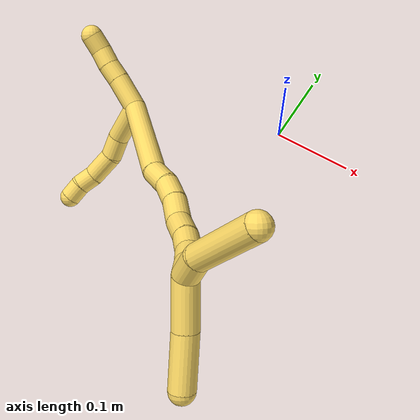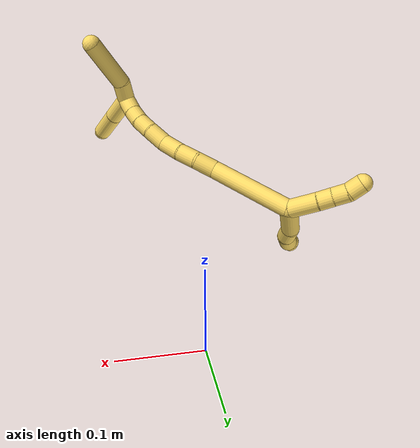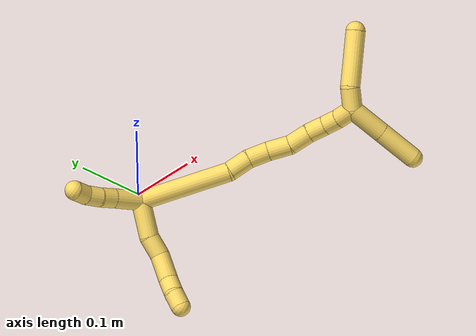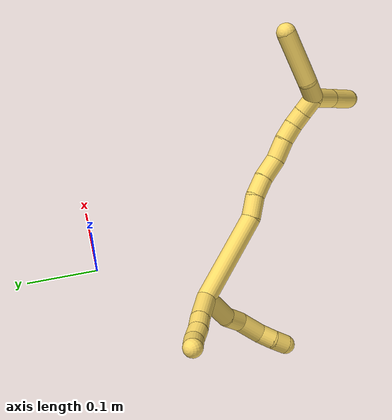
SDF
<sdf version="1.7">
 <world name="default">
  <model name="5">
   <static>0</static>
   <link name="5">
    <collision name="collision-cylinder-e_1_2_8">
     <pose>0.004473 0.015985 0.017065 -0.752718 0.189028 -0.074891</pose>
     <geometry><cylinder><radius>0.0125</radius><length>0.047613</length></cylinder></geometry>
     <surface>
      <friction><ode><mu>1.16</mu><mu2>1.16</mu2><slip1>0</slip1><slip2>0</slip2></ode></friction>
      <contact><ode><kp>1e+06</kp><kd>1</kd><max_vel>0</max_vel><min_depth>0.001</min_depth></ode></contact>
     </surface>
    </collision>
    <visual name="visual-cylinder-e_1_2_8">
     <pose>0.004473 0.015985 0.017065 -0.752718 0.189028 -0.074891</pose>
     <geometry><cylinder><radius>0.0125</radius><length>0.047613</length></cylinder></geometry>
     <material><ambient>1 0.858824 0.4 1</ambient></material>
    </visual>
    <collision name="collision-cylinder-e_2_8_9">
     <pose>0.011957 0.03756 0.045785 -0.447271 0.228793 -0.052253</pose>
     <geometry><cylinder><radius>0.0125</radius><length>0.026542</length></cylinder></geometry>
     <surface>
      <friction><ode><mu>1.16</mu><mu2>1.16</mu2><slip1>0</slip1><slip2>0</slip2></ode></friction>
      <contact><ode><kp>1e+06</kp><kd>1</kd><max_vel>0</max_vel><min_depth>0.001</min_depth></ode></contact>
     </surface>
    </collision>
    <visual name="visual-cylinder-e_2_8_9">
     <pose>0.011957 0.03756 0.045785 -0.447271 0.228793 -0.052253</pose>
     <geometry><cylinder><radius>0.0125</radius><length>0.026542</length></cylinder></geometry>
     <material><ambient>1 0.858824 0.4 1</ambient></material>
    </visual>
    <collision name="collision-cylinder-e_3_9_10">
     <pose>0.023122 0.052757 0.069293 -0.681043 0.490875 -0.177044</pose>
     <geometry><cylinder><radius>0.0125</radius><length>0.034602</length></cylinder></geometry>
     <surface>
      <friction><ode><mu>1.16</mu><mu2>1.16</mu2><slip1>0</slip1><slip2>0</slip2></ode></friction>
      <contact><ode><kp>1e+06</kp><kd>1</kd><max_vel>0</max_vel><min_depth>0.001</min_depth></ode></contact>
     </surface>
    </collision>
    <visual name="visual-cylinder-e_3_9_10">
     <pose>0.023122 0.052757 0.069293 -0.681043 0.490875 -0.177044</pose>
     <geometry><cylinder><radius>0.0125</radius><length>0.034602</length></cylinder></geometry>
     <material><ambient>1 0.858824 0.4 1</ambient></material>
    </visual>
    <collision name="collision-cylinder-e_4_10_11">
     <pose>0.038625 0.066904 0.086826 -0.674403 0.790644 -0.290536</pose>
     <geometry><cylinder><radius>0.0125</radius><length>0.020674</length></cylinder></geometry>
     <surface>
      <friction><ode><mu>1.16</mu><mu2>1.16</mu2><slip1>0</slip1><slip2>0</slip2></ode></friction>
      <contact><ode><kp>1e+06</kp><kd>1</kd><max_vel>0</max_vel><min_depth>0.001</min_depth></ode></contact>
     </surface>
    </collision>
    <visual name="visual-cylinder-e_4_10_11">
     <pose>0.038625 0.066904 0.086826 -0.674403 0.790644 -0.290536</pose>
     <geometry><cylinder><radius>0.0125</radius><length>0.020674</length></cylinder></geometry>
     <material><ambient>1 0.858824 0.4 1</ambient></material>
    </visual>
    <collision name="collision-cylinder-e_5_11_6">
     <pose>0.0514 0.075899 0.100019 -0.535206 0.555928 -0.156157</pose>
     <geometry><cylinder><radius>0.0125</radius><length>0.020569</length></cylinder></geometry>
     <surface>
      <friction><ode><mu>1.16</mu><mu2>1.16</mu2><slip1>0</slip1><slip2>0</slip2></ode></friction>
      <contact><ode><kp>1e+06</kp><kd>1</kd><max_vel>0</max_vel><min_depth>0.001</min_depth></ode></contact>
     </surface>
    </collision>
    <visual name="visual-cylinder-e_5_11_6">
     <pose>0.0514 0.075899 0.100019 -0.535206 0.555928 -0.156157</pose>
     <geometry><cylinder><radius>0.0125</radius><length>0.020569</length></cylinder></geometry>
     <material><ambient>1 0.858824 0.4 1</ambient></material>
    </visual>
    <collision name="collision-cylinder-e_1_2_12">
     <pose>0.006217 0.008078 -0.01679 -2.69317 0.322027 -1.23776</pose>
     <geometry><cylinder><radius>0.0125</radius><length>0.039284</length></cylinder></geometry>
     <surface>
      <friction><ode><mu>1.16</mu><mu2>1.16</mu2><slip1>0</slip1><slip2>0</slip2></ode></friction>
      <contact><ode><kp>1e+06</kp><kd>1</kd><max_vel>0</max_vel><min_depth>0.001</min_depth></ode></contact>
     </surface>
    </collision>
    <visual name="visual-cylinder-e_1_2_12">
     <pose>0.006217 0.008078 -0.01679 -2.69317 0.322027 -1.23776</pose>
     <geometry><cylinder><radius>0.0125</radius><length>0.039284</length></cylinder></geometry>
     <material><ambient>1 0.858824 0.4 1</ambient></material>
    </visual>
    <collision name="collision-cylinder-e_2_12_13">
     <pose>0.016435 0.020261 -0.041975 -2.68679 0.404607 -1.45047</pose>
     <geometry><cylinder><radius>0.0125</radius><length>0.02033</length></cylinder></geometry>
     <surface>
      <friction><ode><mu>1.16</mu><mu2>1.16</mu2><slip1>0</slip1><slip2>0</slip2></ode></friction>
      <contact><ode><kp>1e+06</kp><kd>1</kd><max_vel>0</max_vel><min_depth>0.001</min_depth></ode></contact>
     </surface>
    </collision>
    <visual name="visual-cylinder-e_2_12_13">
     <pose>0.016435 0.020261 -0.041975 -2.68679 0.404607 -1.45047</pose>
     <geometry><cylinder><radius>0.0125</radius><length>0.02033</length></cylinder></geometry>
     <material><ambient>1 0.858824 0.4 1</ambient></material>
    </visual>
    <collision name="collision-cylinder-e_3_13_14">
     <pose>0.023432 0.028012 -0.059389 -2.75741 0.298762 -1.31715</pose>
     <geometry><cylinder><radius>0.0125</radius><length>0.02036</length></cylinder></geometry>
     <surface>
      <friction><ode><mu>1.16</mu><mu2>1.16</mu2><slip1>0</slip1><slip2>0</slip2></ode></friction>
      <contact><ode><kp>1e+06</kp><kd>1</kd><max_vel>0</max_vel><min_depth>0.001</min_depth></ode></contact>
     </surface>
    </collision>
    <visual name="visual-cylinder-e_3_13_14">
     <pose>0.023432 0.028012 -0.059389 -2.75741 0.298762 -1.31715</pose>
     <geometry><cylinder><radius>0.0125</radius><length>0.02036</length></cylinder></geometry>
     <material><ambient>1 0.858824 0.4 1</ambient></material>
    </visual>
    <collision name="collision-cylinder-e_4_14_5">
     <pose>0.031324 0.032948 -0.077048 -2.99342 0.510768 -2.58763</pose>
     <geometry><cylinder><radius>0.0125</radius><length>0.020026</length></cylinder></geometry>
     <surface>
      <friction><ode><mu>1.16</mu><mu2>1.16</mu2><slip1>0</slip1><slip2>0</slip2></ode></friction>
      <contact><ode><kp>1e+06</kp><kd>1</kd><max_vel>0</max_vel><min_depth>0.001</min_depth></ode></contact>
     </surface>
    </collision>
    <visual name="visual-cylinder-e_4_14_5">
     <pose>0.031324 0.032948 -0.077048 -2.99342 0.510768 -2.58763</pose>
     <geometry><cylinder><radius>0.0125</radius><length>0.020026</length></cylinder></geometry>
     <material><ambient>1 0.858824 0.4 1</ambient></material>
    </visual>
    <collision name="collision-cylinder-e_1_2_15">
     <pose>0.012249 -0.047229 0.033964 0.947352 0.207534 0.106664</pose>
     <geometry><cylinder><radius>0.0125</radius><length>0.118898</length></cylinder></geometry>
     <surface>
      <friction><ode><mu>1.16</mu><mu2>1.16</mu2><slip1>0</slip1><slip2>0</slip2></ode></friction>
      <contact><ode><kp>1e+06</kp><kd>1</kd><max_vel>0</max_vel><min_depth>0.001</min_depth></ode></contact>
     </surface>
    </collision>
    <visual name="visual-cylinder-e_1_2_15">
     <pose>0.012249 -0.047229 0.033964 0.947352 0.207534 0.106664</pose>
     <geometry><cylinder><radius>0.0125</radius><length>0.118898</length></cylinder></geometry>
     <material><ambient>1 0.858824 0.4 1</ambient></material>
    </visual>
    <collision name="collision-cylinder-e_2_15_16">
     <pose>0.024253 -0.107861 0.07345 1.17995 -0.016975 -0.011365</pose>
     <geometry><cylinder><radius>0.0125</radius><length>0.028995</length></cylinder></geometry>
     <surface>
      <friction><ode><mu>1.16</mu><mu2>1.16</mu2><slip1>0</slip1><slip2>0</slip2></ode></friction>
      <contact><ode><kp>1e+06</kp><kd>1</kd><max_vel>0</max_vel><min_depth>0.001</min_depth></ode></contact>
     </surface>
    </collision>
    <visual name="visual-cylinder-e_2_15_16">
     <pose>0.024253 -0.107861 0.07345 1.17995 -0.016975 -0.011365</pose>
     <geometry><cylinder><radius>0.0125</radius><length>0.028995</length></cylinder></geometry>
     <material><ambient>1 0.858824 0.4 1</ambient></material>
    </visual>
    <collision name="collision-cylinder-e_3_16_17">
     <pose>0.025838 -0.132509 0.086366 0.989162 0.135252 0.073019</pose>
     <geometry><cylinder><radius>0.0125</radius><length>0.027165</length></cylinder></geometry>
     <surface>
      <friction><ode><mu>1.16</mu><mu2>1.16</mu2><slip1>0</slip1><slip2>0</slip2></ode></friction>
      <contact><ode><kp>1e+06</kp><kd>1</kd><max_vel>0</max_vel><min_depth>0.001</min_depth></ode></contact>
     </surface>
    </collision>
    <visual name="visual-cylinder-e_3_16_17">
     <pose>0.025838 -0.132509 0.086366 0.989162 0.135252 0.073019</pose>
     <geometry><cylinder><radius>0.0125</radius><length>0.027165</length></cylinder></geometry>
     <material><ambient>1 0.858824 0.4 1</ambient></material>
    </visual>
    <collision name="collision-cylinder-e_4_17_18">
     <pose>0.0318 -0.15511 0.102337 0.923897 0.282506 0.141361</pose>
     <geometry><cylinder><radius>0.0125</radius><length>0.029635</length></cylinder></geometry>
     <surface>
      <friction><ode><mu>1.16</mu><mu2>1.16</mu2><slip1>0</slip1><slip2>0</slip2></ode></friction>
      <contact><ode><kp>1e+06</kp><kd>1</kd><max_vel>0</max_vel><min_depth>0.001</min_depth></ode></contact>
     </surface>
    </collision>
    <visual name="visual-cylinder-e_4_17_18">
     <pose>0.0318 -0.15511 0.102337 0.923897 0.282506 0.141361</pose>
     <geometry><cylinder><radius>0.0125</radius><length>0.029635</length></cylinder></geometry>
     <material><ambient>1 0.858824 0.4 1</ambient></material>
    </visual>
    <collision name="collision-cylinder-e_5_18_19">
     <pose>0.039488 -0.179381 0.11563 1.22066 0.253184 0.177564</pose>
     <geometry><cylinder><radius>0.0125</radius><length>0.028406</length></cylinder></geometry>
     <surface>
      <friction><ode><mu>1.16</mu><mu2>1.16</mu2><slip1>0</slip1><slip2>0</slip2></ode></friction>
      <contact><ode><kp>1e+06</kp><kd>1</kd><max_vel>0</max_vel><min_depth>0.001</min_depth></ode></contact>
     </surface>
    </collision>
    <visual name="visual-cylinder-e_5_18_19">
     <pose>0.039488 -0.179381 0.11563 1.22066 0.253184 0.177564</pose>
     <geometry><cylinder><radius>0.0125</radius><length>0.028406</length></cylinder></geometry>
     <material><ambient>1 0.858824 0.4 1</ambient></material>
    </visual>
    <collision name="collision-cylinder-e_6_19_20">
     <pose>0.047103 -0.201993 0.125096 1.11533 0.359466 0.225682</pose>
     <geometry><cylinder><radius>0.0125</radius><length>0.023068</length></cylinder></geometry>
     <surface>
      <friction><ode><mu>1.16</mu><mu2>1.16</mu2><slip1>0</slip1><slip2>0</slip2></ode></friction>
      <contact><ode><kp>1e+06</kp><kd>1</kd><max_vel>0</max_vel><min_depth>0.001</min_depth></ode></contact>
     </surface>
    </collision>
    <visual name="visual-cylinder-e_6_19_20">
     <pose>0.047103 -0.201993 0.125096 1.11533 0.359466 0.225682</pose>
     <geometry><cylinder><radius>0.0125</radius><length>0.023068</length></cylinder></geometry>
     <material><ambient>1 0.858824 0.4 1</ambient></material>
    </visual>
    <collision name="collision-cylinder-e_7_20_21">
     <pose>0.056214 -0.219924 0.133106 1.19388 0.518452 0.356648</pose>
     <geometry><cylinder><radius>0.0125</radius><length>0.020395</length></cylinder></geometry>
     <surface>
      <friction><ode><mu>1.16</mu><mu2>1.16</mu2><slip1>0</slip1><slip2>0</slip2></ode></friction>
      <contact><ode><kp>1e+06</kp><kd>1</kd><max_vel>0</max_vel><min_depth>0.001</min_depth></ode></contact>
     </surface>
    </collision>
    <visual name="visual-cylinder-e_7_20_21">
     <pose>0.056214 -0.219924 0.133106 1.19388 0.518452 0.356648</pose>
     <geometry><cylinder><radius>0.0125</radius><length>0.020395</length></cylinder></geometry>
     <material><ambient>1 0.858824 0.4 1</ambient></material>
    </visual>
    <collision name="collision-cylinder-e_8_21_1">
     <pose>0.067797 -0.237599 0.138727 1.32563 0.591073 0.466667</pose>
     <geometry><cylinder><radius>0.0125</radius><length>0.023438</length></cylinder></geometry>
     <surface>
      <friction><ode><mu>1.16</mu><mu2>1.16</mu2><slip1>0</slip1><slip2>0</slip2></ode></friction>
      <contact><ode><kp>1e+06</kp><kd>1</kd><max_vel>0</max_vel><min_depth>0.001</min_depth></ode></contact>
     </surface>
    </collision>
    <visual name="visual-cylinder-e_8_21_1">
     <pose>0.067797 -0.237599 0.138727 1.32563 0.591073 0.466667</pose>
     <geometry><cylinder><radius>0.0125</radius><length>0.023438</length></cylinder></geometry>
     <material><ambient>1 0.858824 0.4 1</ambient></material>
    </visual>
    <collision name="collision-cylinder-e_1_1_22">
     <pose>0.074446 -0.257588 0.1315 2.30861 0.008291 0.018741</pose>
     <geometry><cylinder><radius>0.0125</radius><length>0.028513</length></cylinder></geometry>
     <surface>
      <friction><ode><mu>1.16</mu><mu2>1.16</mu2><slip1>0</slip1><slip2>0</slip2></ode></friction>
      <contact><ode><kp>1e+06</kp><kd>1</kd><max_vel>0</max_vel><min_depth>0.001</min_depth></ode></contact>
     </surface>
    </collision>
    <visual name="visual-cylinder-e_1_1_22">
     <pose>0.074446 -0.257588 0.1315 2.30861 0.008291 0.018741</pose>
     <geometry><cylinder><radius>0.0125</radius><length>0.028513</length></cylinder></geometry>
     <material><ambient>1 0.858824 0.4 1</ambient></material>
    </visual>
    <collision name="collision-cylinder-e_2_22_4">
     <pose>0.066901 -0.299267 0.106105 2.04058 -0.216054 -0.349759</pose>
     <geometry><cylinder><radius>0.0125</radius><length>0.071487</length></cylinder></geometry>
     <surface>
      <friction><ode><mu>1.16</mu><mu2>1.16</mu2><slip1>0</slip1><slip2>0</slip2></ode></friction>
      <contact><ode><kp>1e+06</kp><kd>1</kd><max_vel>0</max_vel><min_depth>0.001</min_depth></ode></contact>
     </surface>
    </collision>
    <visual name="visual-cylinder-e_2_22_4">
     <pose>0.066901 -0.299267 0.106105 2.04058 -0.216054 -0.349759</pose>
     <geometry><cylinder><radius>0.0125</radius><length>0.071487</length></cylinder></geometry>
     <material><ambient>1 0.858824 0.4 1</ambient></material>
    </visual>
    <collision name="collision-cylinder-e_1_1_23">
     <pose>0.074548 -0.245611 0.164647 -0.060551 0.009329 -0.000283</pose>
     <geometry><cylinder><radius>0.0125</radius><length>0.047204</length></cylinder></geometry>
     <surface>
      <friction><ode><mu>1.16</mu><mu2>1.16</mu2><slip1>0</slip1><slip2>0</slip2></ode></friction>
      <contact><ode><kp>1e+06</kp><kd>1</kd><max_vel>0</max_vel><min_depth>0.001</min_depth></ode></contact>
     </surface>
    </collision>
    <visual name="visual-cylinder-e_1_1_23">
     <pose>0.074548 -0.245611 0.164647 -0.060551 0.009329 -0.000283</pose>
     <geometry><cylinder><radius>0.0125</radius><length>0.047204</length></cylinder></geometry>
     <material><ambient>1 0.858824 0.4 1</ambient></material>
    </visual>
    <collision name="collision-cylinder-e_2_23_3">
     <pose>0.07653 -0.242512 0.214491 -0.063472 0.066781 -0.002121</pose>
     <geometry><cylinder><radius>0.0125</radius><length>0.052796</length></cylinder></geometry>
     <surface>
      <friction><ode><mu>1.16</mu><mu2>1.16</mu2><slip1>0</slip1><slip2>0</slip2></ode></friction>
      <contact><ode><kp>1e+06</kp><kd>1</kd><max_vel>0</max_vel><min_depth>0.001</min_depth></ode></contact>
     </surface>
    </collision>
    <visual name="visual-cylinder-e_2_23_3">
     <pose>0.07653 -0.242512 0.214491 -0.063472 0.066781 -0.002121</pose>
     <geometry><cylinder><radius>0.0125</radius><length>0.052796</length></cylinder></geometry>
     <material><ambient>1 0.858824 0.4 1</ambient></material>
    </visual>
    <collision name="collision-sphere-3">
     <pose>0.078291 -0.240841 0.240777 0 -0 0</pose>
     <geometry><sphere><radius>0.0125</radius></sphere></geometry>
     <surface>
      <friction><ode><mu>1.16</mu><mu2>1.16</mu2><slip1>0</slip1><slip2>0</slip2></ode></friction>
      <contact><ode><kp>1e+06</kp><kd>1</kd><max_vel>0</max_vel><min_depth>0.001</min_depth></ode></contact>
     </surface>
    </collision>
    <visual name="visual-sphere-3">
     <pose>0.078291 -0.240841 0.240777 0 -0 0</pose>
     <geometry><sphere><radius>0.0125</radius></sphere></geometry>
     <material><ambient>1 0.858824 0.4 1</ambient></material>
    </visual>
    <collision name="collision-sphere-23">
     <pose>0.074768 -0.244183 0.188204 0 -0 0</pose>
     <geometry><sphere><radius>0.0125</radius></sphere></geometry>
     <surface>
      <friction><ode><mu>1.16</mu><mu2>1.16</mu2><slip1>0</slip1><slip2>0</slip2></ode></friction>
      <contact><ode><kp>1e+06</kp><kd>1</kd><max_vel>0</max_vel><min_depth>0.001</min_depth></ode></contact>
     </surface>
    </collision>
    <visual name="visual-sphere-23">
     <pose>0.074768 -0.244183 0.188204 0 -0 0</pose>
     <geometry><sphere><radius>0.0125</radius></sphere></geometry>
     <material><ambient>1 0.858824 0.4 1</ambient></material>
    </visual>
    <collision name="collision-sphere-4">
     <pose>0.059239 -0.330397 0.090301 0 -0 0</pose>
     <geometry><sphere><radius>0.0125</radius></sphere></geometry>
     <surface>
      <friction><ode><mu>1.16</mu><mu2>1.16</mu2><slip1>0</slip1><slip2>0</slip2></ode></friction>
      <contact><ode><kp>1e+06</kp><kd>1</kd><max_vel>0</max_vel><min_depth>0.001</min_depth></ode></contact>
     </surface>
    </collision>
    <visual name="visual-sphere-4">
     <pose>0.059239 -0.330397 0.090301 0 -0 0</pose>
     <geometry><sphere><radius>0.0125</radius></sphere></geometry>
     <material><ambient>1 0.858824 0.4 1</ambient></material>
    </visual>
    <collision name="collision-sphere-22">
     <pose>0.074564 -0.268136 0.12191 0 -0 0</pose>
     <geometry><sphere><radius>0.0125</radius></sphere></geometry>
     <surface>
      <friction><ode><mu>1.16</mu><mu2>1.16</mu2><slip1>0</slip1><slip2>0</slip2></ode></friction>
      <contact><ode><kp>1e+06</kp><kd>1</kd><max_vel>0</max_vel><min_depth>0.001</min_depth></ode></contact>
     </surface>
    </collision>
    <visual name="visual-sphere-22">
     <pose>0.074564 -0.268136 0.12191 0 -0 0</pose>
     <geometry><sphere><radius>0.0125</radius></sphere></geometry>
     <material><ambient>1 0.858824 0.4 1</ambient></material>
    </visual>
    <collision name="collision-sphere-1">
     <pose>0.074328 -0.247039 0.141089 0 -0 0</pose>
     <geometry><sphere><radius>0.0125</radius></sphere></geometry>
     <surface>
      <friction><ode><mu>1.16</mu><mu2>1.16</mu2><slip1>0</slip1><slip2>0</slip2></ode></friction>
      <contact><ode><kp>1e+06</kp><kd>1</kd><max_vel>0</max_vel><min_depth>0.001</min_depth></ode></contact>
     </surface>
    </collision>
    <visual name="visual-sphere-1">
     <pose>0.074328 -0.247039 0.141089 0 -0 0</pose>
     <geometry><sphere><radius>0.0125</radius></sphere></geometry>
     <material><ambient>1 0.858824 0.4 1</ambient></material>
    </visual>
    <collision name="collision-sphere-21">
     <pose>0.061267 -0.22816 0.136366 0 -0 0</pose>
     <geometry><sphere><radius>0.0125</radius></sphere></geometry>
     <surface>
      <friction><ode><mu>1.16</mu><mu2>1.16</mu2><slip1>0</slip1><slip2>0</slip2></ode></friction>
      <contact><ode><kp>1e+06</kp><kd>1</kd><max_vel>0</max_vel><min_depth>0.001</min_depth></ode></contact>
     </surface>
    </collision>
    <visual name="visual-sphere-21">
     <pose>0.061267 -0.22816 0.136366 0 -0 0</pose>
     <geometry><sphere><radius>0.0125</radius></sphere></geometry>
     <material><ambient>1 0.858824 0.4 1</ambient></material>
    </visual>
    <collision name="collision-sphere-6">
     <pose>0.056828 0.080354 0.107533 0 -0 0</pose>
     <geometry><sphere><radius>0.0125</radius></sphere></geometry>
     <surface>
      <friction><ode><mu>1.16</mu><mu2>1.16</mu2><slip1>0</slip1><slip2>0</slip2></ode></friction>
      <contact><ode><kp>1e+06</kp><kd>1</kd><max_vel>0</max_vel><min_depth>0.001</min_depth></ode></contact>
     </surface>
    </collision>
    <visual name="visual-sphere-6">
     <pose>0.056828 0.080354 0.107533 0 -0 0</pose>
     <geometry><sphere><radius>0.0125</radius></sphere></geometry>
     <material><ambient>1 0.858824 0.4 1</ambient></material>
    </visual>
    <collision name="collision-sphere-11">
     <pose>0.045973 0.071444 0.092505 0 -0 0</pose>
     <geometry><sphere><radius>0.0125</radius></sphere></geometry>
     <surface>
      <friction><ode><mu>1.16</mu><mu2>1.16</mu2><slip1>0</slip1><slip2>0</slip2></ode></friction>
      <contact><ode><kp>1e+06</kp><kd>1</kd><max_vel>0</max_vel><min_depth>0.001</min_depth></ode></contact>
     </surface>
    </collision>
    <visual name="visual-sphere-11">
     <pose>0.045973 0.071444 0.092505 0 -0 0</pose>
     <geometry><sphere><radius>0.0125</radius></sphere></geometry>
     <material><ambient>1 0.858824 0.4 1</ambient></material>
    </visual>
    <collision name="collision-sphere-10">
     <pose>0.031278 0.062363 0.081147 0 -0 0</pose>
     <geometry><sphere><radius>0.0125</radius></sphere></geometry>
     <surface>
      <friction><ode><mu>1.16</mu><mu2>1.16</mu2><slip1>0</slip1><slip2>0</slip2></ode></friction>
      <contact><ode><kp>1e+06</kp><kd>1</kd><max_vel>0</max_vel><min_depth>0.001</min_depth></ode></contact>
     </surface>
    </collision>
    <visual name="visual-sphere-10">
     <pose>0.031278 0.062363 0.081147 0 -0 0</pose>
     <geometry><sphere><radius>0.0125</radius></sphere></geometry>
     <material><ambient>1 0.858824 0.4 1</ambient></material>
    </visual>
    <collision name="collision-sphere-9">
     <pose>0.014967 0.04315 0.057438 0 -0 0</pose>
     <geometry><sphere><radius>0.0125</radius></sphere></geometry>
     <surface>
      <friction><ode><mu>1.16</mu><mu2>1.16</mu2><slip1>0</slip1><slip2>0</slip2></ode></friction>
      <contact><ode><kp>1e+06</kp><kd>1</kd><max_vel>0</max_vel><min_depth>0.001</min_depth></ode></contact>
     </surface>
    </collision>
    <visual name="visual-sphere-9">
     <pose>0.014967 0.04315 0.057438 0 -0 0</pose>
     <geometry><sphere><radius>0.0125</radius></sphere></geometry>
     <material><ambient>1 0.858824 0.4 1</ambient></material>
    </visual>
    <collision name="collision-sphere-2">
     <geometry><sphere><radius>0.0125</radius></sphere></geometry>
     <surface>
      <friction><ode><mu>1.16</mu><mu2>1.16</mu2><slip1>0</slip1><slip2>0</slip2></ode></friction>
      <contact><ode><kp>1e+06</kp><kd>1</kd><max_vel>0</max_vel><min_depth>0.001</min_depth></ode></contact>
     </surface>
    </collision>
    <visual name="visual-sphere-2">
     <geometry><sphere><radius>0.0125</radius></sphere></geometry>
     <material><ambient>1 0.858824 0.4 1</ambient></material>
    </visual>
    <collision name="collision-sphere-19">
     <pose>0.043046 -0.192296 0.120347 0 -0 0</pose>
     <geometry><sphere><radius>0.0125</radius></sphere></geometry>
     <surface>
      <friction><ode><mu>1.16</mu><mu2>1.16</mu2><slip1>0</slip1><slip2>0</slip2></ode></friction>
      <contact><ode><kp>1e+06</kp><kd>1</kd><max_vel>0</max_vel><min_depth>0.001</min_depth></ode></contact>
     </surface>
    </collision>
    <visual name="visual-sphere-19">
     <pose>0.043046 -0.192296 0.120347 0 -0 0</pose>
     <geometry><sphere><radius>0.0125</radius></sphere></geometry>
     <material><ambient>1 0.858824 0.4 1</ambient></material>
    </visual>
    <collision name="collision-sphere-8">
     <pose>0.008947 0.03197 0.034131 0 -0 0</pose>
     <geometry><sphere><radius>0.0125</radius></sphere></geometry>
     <surface>
      <friction><ode><mu>1.16</mu><mu2>1.16</mu2><slip1>0</slip1><slip2>0</slip2></ode></friction>
      <contact><ode><kp>1e+06</kp><kd>1</kd><max_vel>0</max_vel><min_depth>0.001</min_depth></ode></contact>
     </surface>
    </collision>
    <visual name="visual-sphere-8">
     <pose>0.008947 0.03197 0.034131 0 -0 0</pose>
     <geometry><sphere><radius>0.0125</radius></sphere></geometry>
     <material><ambient>1 0.858824 0.4 1</ambient></material>
    </visual>
    <collision name="collision-sphere-12">
     <pose>0.012433 0.016156 -0.03358 0 -0 0</pose>
     <geometry><sphere><radius>0.0125</radius></sphere></geometry>
     <surface>
      <friction><ode><mu>1.16</mu><mu2>1.16</mu2><slip1>0</slip1><slip2>0</slip2></ode></friction>
      <contact><ode><kp>1e+06</kp><kd>1</kd><max_vel>0</max_vel><min_depth>0.001</min_depth></ode></contact>
     </surface>
    </collision>
    <visual name="visual-sphere-12">
     <pose>0.012433 0.016156 -0.03358 0 -0 0</pose>
     <geometry><sphere><radius>0.0125</radius></sphere></geometry>
     <material><ambient>1 0.858824 0.4 1</ambient></material>
    </visual>
    <collision name="collision-sphere-13">
     <pose>0.020436 0.024366 -0.050369 0 -0 0</pose>
     <geometry><sphere><radius>0.0125</radius></sphere></geometry>
     <surface>
      <friction><ode><mu>1.16</mu><mu2>1.16</mu2><slip1>0</slip1><slip2>0</slip2></ode></friction>
      <contact><ode><kp>1e+06</kp><kd>1</kd><max_vel>0</max_vel><min_depth>0.001</min_depth></ode></contact>
     </surface>
    </collision>
    <visual name="visual-sphere-13">
     <pose>0.020436 0.024366 -0.050369 0 -0 0</pose>
     <geometry><sphere><radius>0.0125</radius></sphere></geometry>
     <material><ambient>1 0.858824 0.4 1</ambient></material>
    </visual>
    <collision name="collision-sphere-14">
     <pose>0.026429 0.031659 -0.068409 0 -0 0</pose>
     <geometry><sphere><radius>0.0125</radius></sphere></geometry>
     <surface>
      <friction><ode><mu>1.16</mu><mu2>1.16</mu2><slip1>0</slip1><slip2>0</slip2></ode></friction>
      <contact><ode><kp>1e+06</kp><kd>1</kd><max_vel>0</max_vel><min_depth>0.001</min_depth></ode></contact>
     </surface>
    </collision>
    <visual name="visual-sphere-14">
     <pose>0.026429 0.031659 -0.068409 0 -0 0</pose>
     <geometry><sphere><radius>0.0125</radius></sphere></geometry>
     <material><ambient>1 0.858824 0.4 1</ambient></material>
    </visual>
    <collision name="collision-sphere-5">
     <pose>0.036218 0.034238 -0.085687 0 -0 0</pose>
     <geometry><sphere><radius>0.0125</radius></sphere></geometry>
     <surface>
      <friction><ode><mu>1.16</mu><mu2>1.16</mu2><slip1>0</slip1><slip2>0</slip2></ode></friction>
      <contact><ode><kp>1e+06</kp><kd>1</kd><max_vel>0</max_vel><min_depth>0.001</min_depth></ode></contact>
     </surface>
    </collision>
    <visual name="visual-sphere-5">
     <pose>0.036218 0.034238 -0.085687 0 -0 0</pose>
     <geometry><sphere><radius>0.0125</radius></sphere></geometry>
     <material><ambient>1 0.858824 0.4 1</ambient></material>
    </visual>
    <collision name="collision-sphere-15">
     <pose>0.024499 -0.094459 0.067927 0 -0 0</pose>
     <geometry><sphere><radius>0.0125</radius></sphere></geometry>
     <surface>
      <friction><ode><mu>1.16</mu><mu2>1.16</mu2><slip1>0</slip1><slip2>0</slip2></ode></friction>
      <contact><ode><kp>1e+06</kp><kd>1</kd><max_vel>0</max_vel><min_depth>0.001</min_depth></ode></contact>
     </surface>
    </collision>
    <visual name="visual-sphere-15">
     <pose>0.024499 -0.094459 0.067927 0 -0 0</pose>
     <geometry><sphere><radius>0.0125</radius></sphere></geometry>
     <material><ambient>1 0.858824 0.4 1</ambient></material>
    </visual>
    <collision name="collision-sphere-16">
     <pose>0.024006 -0.121263 0.078972 0 -0 0</pose>
     <geometry><sphere><radius>0.0125</radius></sphere></geometry>
     <surface>
      <friction><ode><mu>1.16</mu><mu2>1.16</mu2><slip1>0</slip1><slip2>0</slip2></ode></friction>
      <contact><ode><kp>1e+06</kp><kd>1</kd><max_vel>0</max_vel><min_depth>0.001</min_depth></ode></contact>
     </surface>
    </collision>
    <visual name="visual-sphere-16">
     <pose>0.024006 -0.121263 0.078972 0 -0 0</pose>
     <geometry><sphere><radius>0.0125</radius></sphere></geometry>
     <material><ambient>1 0.858824 0.4 1</ambient></material>
    </visual>
    <collision name="collision-sphere-17">
     <pose>0.027669 -0.143755 0.09376 0 -0 0</pose>
     <geometry><sphere><radius>0.0125</radius></sphere></geometry>
     <surface>
      <friction><ode><mu>1.16</mu><mu2>1.16</mu2><slip1>0</slip1><slip2>0</slip2></ode></friction>
      <contact><ode><kp>1e+06</kp><kd>1</kd><max_vel>0</max_vel><min_depth>0.001</min_depth></ode></contact>
     </surface>
    </collision>
    <visual name="visual-sphere-17">
     <pose>0.027669 -0.143755 0.09376 0 -0 0</pose>
     <geometry><sphere><radius>0.0125</radius></sphere></geometry>
     <material><ambient>1 0.858824 0.4 1</ambient></material>
    </visual>
    <collision name="collision-sphere-18">
     <pose>0.035931 -0.166465 0.110914 0 -0 0</pose>
     <geometry><sphere><radius>0.0125</radius></sphere></geometry>
     <surface>
      <friction><ode><mu>1.16</mu><mu2>1.16</mu2><slip1>0</slip1><slip2>0</slip2></ode></friction>
      <contact><ode><kp>1e+06</kp><kd>1</kd><max_vel>0</max_vel><min_depth>0.001</min_depth></ode></contact>
     </surface>
    </collision>
    <visual name="visual-sphere-18">
     <pose>0.035931 -0.166465 0.110914 0 -0 0</pose>
     <geometry><sphere><radius>0.0125</radius></sphere></geometry>
     <material><ambient>1 0.858824 0.4 1</ambient></material>
    </visual>
    <collision name="collision-sphere-20">
     <pose>0.051161 -0.211689 0.129846 0 -0 0</pose>
     <geometry><sphere><radius>0.0125</radius></sphere></geometry>
     <surface>
      <friction><ode><mu>1.16</mu><mu2>1.16</mu2><slip1>0</slip1><slip2>0</slip2></ode></friction>
      <contact><ode><kp>1e+06</kp><kd>1</kd><max_vel>0</max_vel><min_depth>0.001</min_depth></ode></contact>
     </surface>
    </collision>
    <visual name="visual-sphere-20">
     <pose>0.051161 -0.211689 0.129846 0 -0 0</pose>
     <geometry><sphere><radius>0.0125</radius></sphere></geometry>
     <material><ambient>1 0.858824 0.4 1</ambient></material>
    </visual>
    <inertial>
     <pose>0.037442 -0.108529 0.077502 0 -0 0</pose>
     <mass>0.75</mass>
     <inertia>
      <ixx>0.000244</ixx>
      <ixy>0</ixy>
      <ixz>0</ixz>
      <iyy>0.000102</iyy>
      <iyz>0</iyz>
      <izz>0.000121</izz>
     </inertia>
    </inertial>
   </link>
   <pose>-0.133784 -0.126391 0.110603 -2.27692 -0.411704 -2.22458</pose>
  </model>
 </world>
</sdf>
